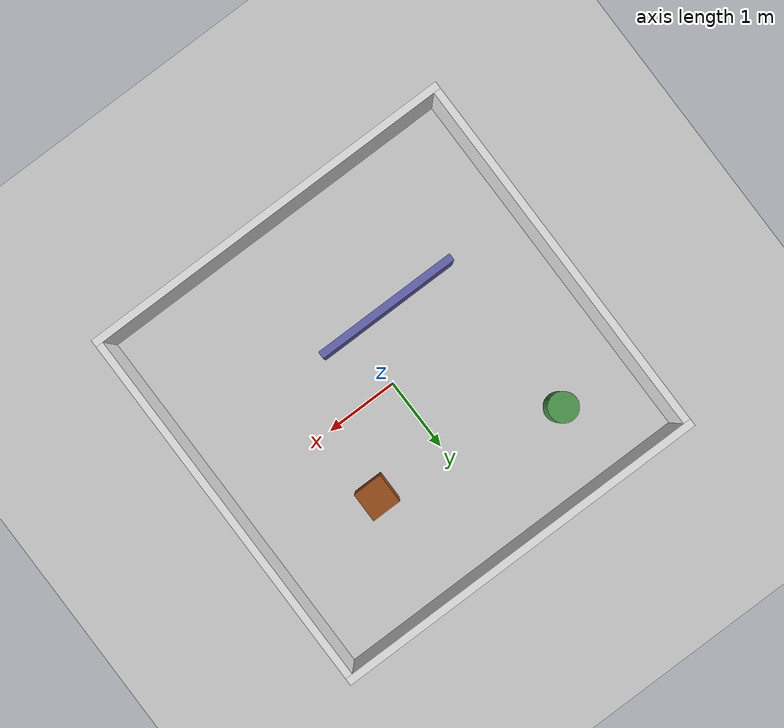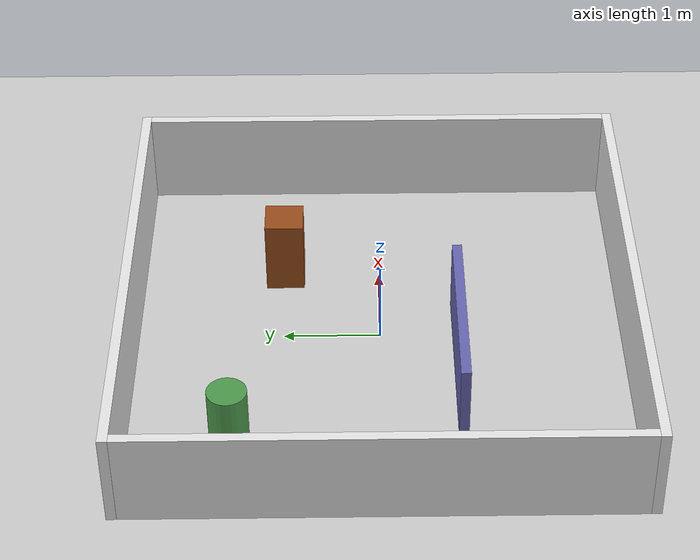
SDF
<?xml version="1.0" ?>
<sdf version="1.8">
  <world name="simple_room">

    <!-- Physics -->
    <physics name="1ms" type="ode">
      <max_step_size>0.001</max_step_size>
      <real_time_factor>1.0</real_time_factor>
      <real_time_update_rate>1000</real_time_update_rate>
    </physics>

    <!-- Plugins required for Gazebo Harmonic simulation -->
    <plugin filename="gz-sim-physics-system" name="gz::sim::systems::Physics"/>
    <plugin filename="gz-sim-user-commands-system" name="gz::sim::systems::UserCommands"/>
    <plugin filename="gz-sim-scene-broadcaster-system" name="gz::sim::systems::SceneBroadcaster"/>
    <plugin filename="gz-sim-sensors-system" name="gz::sim::systems::Sensors">
      <render_engine>ogre2</render_engine>
    </plugin>
    <plugin filename="gz-sim-contact-system" name="gz::sim::systems::Contact"/>

    <!-- Lighting -->
    <light type="directional" name="sun">
      <cast_shadows>true</cast_shadows>
      <pose>0 0 10 0 0 0</pose>
      <diffuse>0.8 0.8 0.8 1</diffuse>
      <specular>0.2 0.2 0.2 1</specular>
      <attenuation>
        <range>1000</range>
        <constant>0.9</constant>
        <linear>0.01</linear>
        <quadratic>0.001</quadratic>
      </attenuation>
      <direction>-0.5 0.1 -0.9</direction>
    </light>

    <!-- Ground plane -->
    <model name="ground_plane">
      <static>true</static>
      <link name="link">
        <collision name="collision">
          <geometry>
            <plane>
              <normal>0 0 1</normal>
              <size>100 100</size>
            </plane>
          </geometry>
        </collision>
        <visual name="visual">
          <geometry>
            <plane>
              <normal>0 0 1</normal>
              <size>100 100</size>
            </plane>
          </geometry>
          <material>
            <ambient>0.8 0.8 0.8 1</ambient>
            <diffuse>0.8 0.8 0.8 1</diffuse>
            <specular>0.8 0.8 0.8 1</specular>
          </material>
        </visual>
      </link>
    </model>

    <!-- ==================== ROOM: 5m x 5m with walls ==================== -->
    <!-- Wall height: 1.0m, thickness: 0.1m -->

    <!-- North wall (y = +2.5) -->
    <model name="wall_north">
      <static>true</static>
      <pose>0 2.55 0.5 0 0 0</pose>
      <link name="link">
        <collision name="collision">
          <geometry>
            <box><size>5.2 0.1 1.0</size></box>
          </geometry>
        </collision>
        <visual name="visual">
          <geometry>
            <box><size>5.2 0.1 1.0</size></box>
          </geometry>
          <material>
            <ambient>0.9 0.9 0.9 1</ambient>
            <diffuse>0.9 0.9 0.9 1</diffuse>
          </material>
        </visual>
      </link>
    </model>

    <!-- South wall (y = -2.5) -->
    <model name="wall_south">
      <static>true</static>
      <pose>0 -2.55 0.5 0 0 0</pose>
      <link name="link">
        <collision name="collision">
          <geometry>
            <box><size>5.2 0.1 1.0</size></box>
          </geometry>
        </collision>
        <visual name="visual">
          <geometry>
            <box><size>5.2 0.1 1.0</size></box>
          </geometry>
          <material>
            <ambient>0.9 0.9 0.9 1</ambient>
            <diffuse>0.9 0.9 0.9 1</diffuse>
          </material>
        </visual>
      </link>
    </model>

    <!-- East wall (x = +2.5) -->
    <model name="wall_east">
      <static>true</static>
      <pose>2.55 0 0.5 0 0 0</pose>
      <link name="link">
        <collision name="collision">
          <geometry>
            <box><size>0.1 5.0 1.0</size></box>
          </geometry>
        </collision>
        <visual name="visual">
          <geometry>
            <box><size>0.1 5.0 1.0</size></box>
          </geometry>
          <material>
            <ambient>0.9 0.9 0.9 1</ambient>
            <diffuse>0.9 0.9 0.9 1</diffuse>
          </material>
        </visual>
      </link>
    </model>

    <!-- West wall (x = -2.5) -->
    <model name="wall_west">
      <static>true</static>
      <pose>-2.55 0 0.5 0 0 0</pose>
      <link name="link">
        <collision name="collision">
          <geometry>
            <box><size>0.1 5.0 1.0</size></box>
          </geometry>
        </collision>
        <visual name="visual">
          <geometry>
            <box><size>0.1 5.0 1.0</size></box>
          </geometry>
          <material>
            <ambient>0.9 0.9 0.9 1</ambient>
            <diffuse>0.9 0.9 0.9 1</diffuse>
          </material>
        </visual>
      </link>
    </model>

    <!-- ==================== INTERIOR OBSTACLES ==================== -->

    <!-- Obstacle 1: tall box (pillar) -->
    <model name="obstacle_pillar">
      <static>true</static>
      <pose>1.0 1.0 0.4 0 0 0</pose>
      <link name="link">
        <collision name="collision">
          <geometry>
            <box><size>0.4 0.4 0.8</size></box>
          </geometry>
        </collision>
        <visual name="visual">
          <geometry>
            <box><size>0.4 0.4 0.8</size></box>
          </geometry>
          <material>
            <ambient>0.6 0.3 0.1 1</ambient>
            <diffuse>0.6 0.3 0.1 1</diffuse>
          </material>
        </visual>
      </link>
    </model>

    <!-- Obstacle 2: long divider wall -->
    <model name="obstacle_divider">
      <static>true</static>
      <pose>-0.5 -0.8 0.4 0 0 0</pose>
      <link name="link">
        <collision name="collision">
          <geometry>
            <box><size>2.0 0.1 0.8</size></box>
          </geometry>
        </collision>
        <visual name="visual">
          <geometry>
            <box><size>2.0 0.1 0.8</size></box>
          </geometry>
          <material>
            <ambient>0.4 0.4 0.7 1</ambient>
            <diffuse>0.4 0.4 0.7 1</diffuse>
          </material>
        </visual>
      </link>
    </model>

    <!-- Obstacle 3: cylinder (like a trash bin) -->
    <model name="obstacle_cylinder">
      <static>true</static>
      <pose>-1.5 1.5 0.3 0 0 0</pose>
      <link name="link">
        <collision name="collision">
          <geometry>
            <cylinder><radius>0.2</radius><length>0.6</length></cylinder>
          </geometry>
        </collision>
        <visual name="visual">
          <geometry>
            <cylinder><radius>0.2</radius><length>0.6</length></cylinder>
          </geometry>
          <material>
            <ambient>0.3 0.6 0.3 1</ambient>
            <diffuse>0.3 0.6 0.3 1</diffuse>
          </material>
        </visual>
      </link>
    </model>

  </world>
</sdf>
